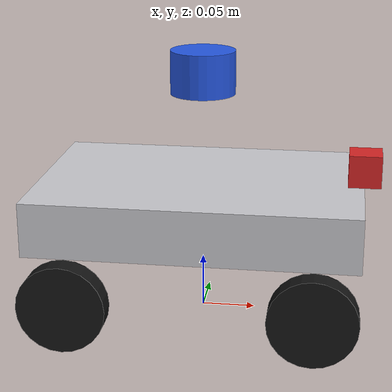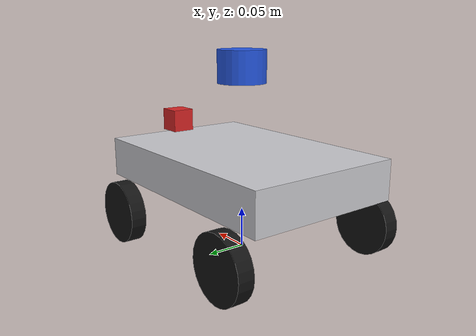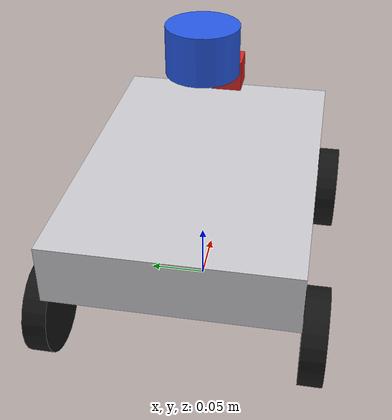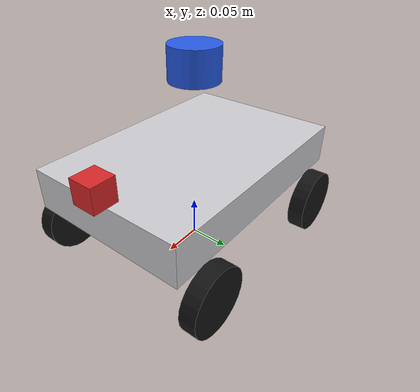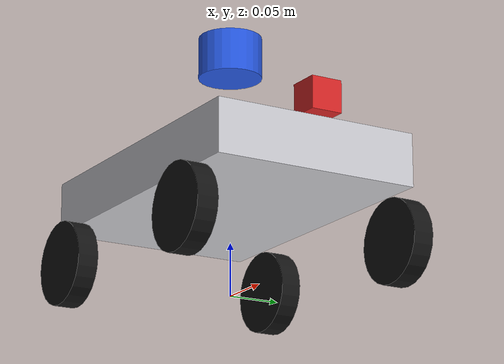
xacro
<?xml version="1.0"?>
<robot name="mobile_robot_with_sensors" xmlns:xacro="http://www.ros.org/wiki/xacro">
  <xacro:include filename="components/mobile_base_macros.xacro"/>
  <xacro:include filename="components/sensors_macros.xacro"/>

  <xacro:property name="base_length" value="0.3"/>
  <xacro:property name="base_width" value="0.2"/>
  <xacro:property name="base_height" value="0.05"/>
  <xacro:property name="wheel_radius" value="0.04"/>
  <xacro:property name="wheel_length" value="0.02"/>
  <xacro:property name="lidar_radius" value="0.03"/>
  <xacro:property name="lidar_length" value="0.04"/>
  <xacro:property name="camera_size" value="0.03"/>

  <link name="world"/>

  <xacro:four_wheel_base
    prefix=""
    parent="world"
    base_xyz="0 0 ${base_height / 2.0 + 2.0 * wheel_radius}"
    base_length="${base_length}"
    base_width="${base_width}"
    base_height="${base_height}"
    wheel_radius="${wheel_radius}"
    wheel_length="${wheel_length}"/>

  <xacro:lidar_sensor
    prefix=""
    parent="base_link"
    xyz="0 0 ${base_height / 2.0 + 0.10}"
    radius="${lidar_radius}"
    length="${lidar_length}"/>

  <xacro:camera_sensor
    prefix=""
    parent="base_link"
    xyz="${base_length / 2.0} 0 ${base_height / 2.0 + camera_size / 2.0}"
    size="${camera_size}"/>
</robot>

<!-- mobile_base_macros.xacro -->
<robot xmlns:xacro="http://www.ros.org/wiki/xacro">
  <material name="silver">
    <color rgba="0.80 0.80 0.82 1.0"/>
  </material>
  <material name="black">
    <color rgba="0.08 0.08 0.08 1.0"/>
  </material>

  <xacro:macro name="chassis_link" params="name length width height material:=silver">
    <link name="${name}">
      <visual>
        <geometry>
          <box size="${length} ${width} ${height}"/>
        </geometry>
        <material name="${material}"/>
      </visual>
      <collision>
        <geometry>
          <box size="${length} ${width} ${height}"/>
        </geometry>
      </collision>
    </link>
  </xacro:macro>

  <xacro:macro name="wheel_link" params="name radius length material:=black">
    <link name="${name}">
      <visual>
        <origin xyz="0 0 0" rpy="1.57079632679 0 0"/>
        <geometry>
          <cylinder radius="${radius}" length="${length}"/>
        </geometry>
        <material name="${material}"/>
      </visual>
      <collision>
        <origin xyz="0 0 0" rpy="1.57079632679 0 0"/>
        <geometry>
          <cylinder radius="${radius}" length="${length}"/>
        </geometry>
      </collision>
    </link>
  </xacro:macro>

  <xacro:macro name="wheel_joint" params="name parent child xyz">
    <joint name="${name}" type="continuous">
      <parent link="${parent}"/>
      <child link="${child}"/>
      <origin xyz="${xyz}" rpy="0 0 0"/>
      <axis xyz="0 1 0"/>
    </joint>
  </xacro:macro>

  <xacro:macro
    name="four_wheel_base"
    params="prefix parent base_xyz base_length base_width base_height wheel_radius wheel_length">
    <xacro:chassis_link
      name="${prefix}base_link"
      length="${base_length}"
      width="${base_width}"
      height="${base_height}"/>

    <joint name="${prefix}world_to_base" type="fixed">
      <parent link="${parent}"/>
      <child link="${prefix}base_link"/>
      <origin xyz="${base_xyz}" rpy="0 0 0"/>
    </joint>

    <xacro:property name="wheel_x" value="${base_length / 2.0 - wheel_radius}"/>
    <xacro:property name="wheel_y" value="${base_width / 2.0 + wheel_length / 2.0}"/>
    <xacro:property name="wheel_z" value="${-(base_height / 2.0 + wheel_radius)}"/>

    <xacro:wheel_link name="${prefix}front_left_wheel" radius="${wheel_radius}" length="${wheel_length}"/>
    <xacro:wheel_link name="${prefix}front_right_wheel" radius="${wheel_radius}" length="${wheel_length}"/>
    <xacro:wheel_link name="${prefix}rear_left_wheel" radius="${wheel_radius}" length="${wheel_length}"/>
    <xacro:wheel_link name="${prefix}rear_right_wheel" radius="${wheel_radius}" length="${wheel_length}"/>

    <xacro:wheel_joint
      name="${prefix}front_left_wheel_joint"
      parent="${prefix}base_link"
      child="${prefix}front_left_wheel"
      xyz="${wheel_x} ${wheel_y} ${wheel_z}"/>
    <xacro:wheel_joint
      name="${prefix}front_right_wheel_joint"
      parent="${prefix}base_link"
      child="${prefix}front_right_wheel"
      xyz="${wheel_x} ${-wheel_y} ${wheel_z}"/>
    <xacro:wheel_joint
      name="${prefix}rear_left_wheel_joint"
      parent="${prefix}base_link"
      child="${prefix}rear_left_wheel"
      xyz="${-wheel_x} ${wheel_y} ${wheel_z}"/>
    <xacro:wheel_joint
      name="${prefix}rear_right_wheel_joint"
      parent="${prefix}base_link"
      child="${prefix}rear_right_wheel"
      xyz="${-wheel_x} ${-wheel_y} ${wheel_z}"/>
  </xacro:macro>
</robot>

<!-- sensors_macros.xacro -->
<robot xmlns:xacro="http://www.ros.org/wiki/xacro">
  <material name="sensor_blue">
    <color rgba="0.15 0.35 0.90 1.0"/>
  </material>
  <material name="sensor_red">
    <color rgba="0.85 0.15 0.15 1.0"/>
  </material>

  <xacro:macro name="lidar_sensor" params="prefix parent xyz radius length">
    <link name="${prefix}lidar_link">
      <visual>
        <geometry>
          <cylinder radius="${radius}" length="${length}"/>
        </geometry>
        <material name="sensor_blue"/>
      </visual>
      <collision>
        <geometry>
          <cylinder radius="${radius}" length="${length}"/>
        </geometry>
      </collision>
    </link>

    <joint name="${prefix}lidar_joint" type="fixed">
      <parent link="${parent}"/>
      <child link="${prefix}lidar_link"/>
      <origin xyz="${xyz}" rpy="0 0 0"/>
    </joint>
  </xacro:macro>

  <xacro:macro name="camera_sensor" params="prefix parent xyz size">
    <link name="${prefix}camera_link">
      <visual>
        <geometry>
          <box size="${size} ${size} ${size}"/>
        </geometry>
        <material name="sensor_red"/>
      </visual>
      <collision>
        <geometry>
          <box size="${size} ${size} ${size}"/>
        </geometry>
      </collision>
    </link>

    <joint name="${prefix}camera_joint" type="fixed">
      <parent link="${parent}"/>
      <child link="${prefix}camera_link"/>
      <origin xyz="${xyz}" rpy="0 0 0"/>
    </joint>
  </xacro:macro>
</robot>
